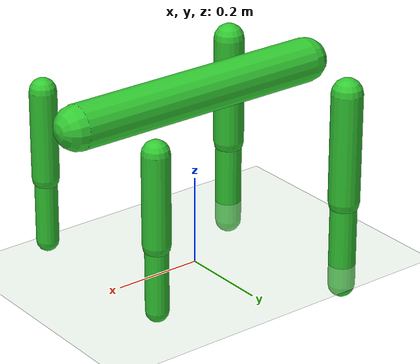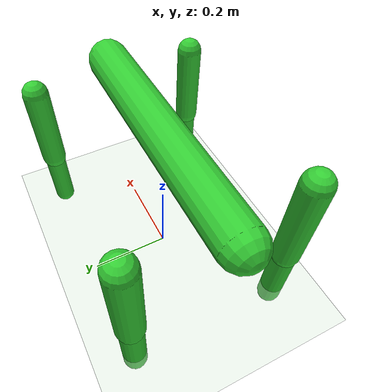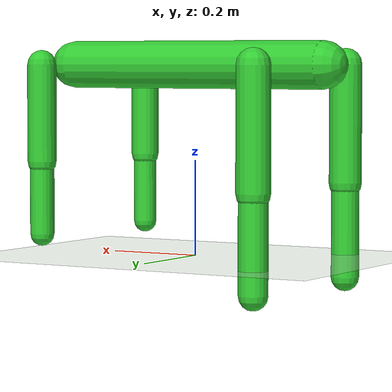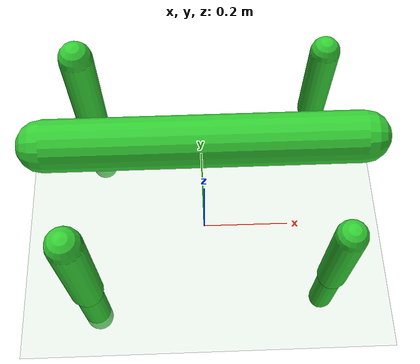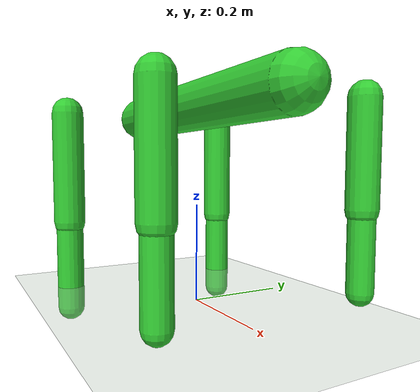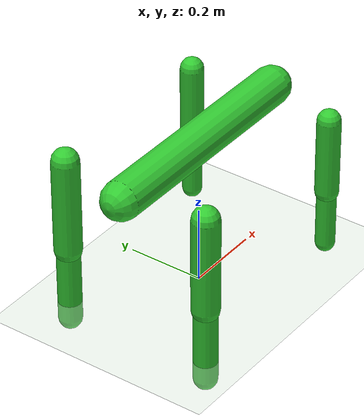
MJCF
<mujoco model="frog">
  <compiler angle="radian" coordinate="local" inertiafromgeom="true" settotalmass="5"/>
  <default>
    <joint armature=".1" damping=".01" limited="true" solimplimit="0 .8 .03" solreflimit=".02 1" stiffness="8"/>
    <geom conaffinity="0" condim="3" contype="1" friction=".4 .1 .1" rgba="0.2 0.8 0.2 1" solimp="0.0 0.8 0.01" solref="0.02 1"/>
    <motor ctrllimited="true" ctrlrange="-1 1"/>
  </default>
  <size nstack="300000"/>
  <option gravity="0 0 -9.81" timestep="0.01"/>
  <asset>
    <texture builtin="gradient" height="100" rgb1="1 1 1" rgb2="0 0 0" type="skybox" width="100"/>
    <material name="geom" rgba="0.2 0.8 0.2 1"/>
  </asset>
  <worldbody>
    <light cutoff="100" diffuse="1 1 1" dir="-0 0 -1.3" directional="true" exponent="1" pos="0 0 1.3" specular=".1 .1 .1"/>
    <geom type="plane" pos="0 0 0" size="10 10 0.1" rgba="0.8 0.9 0.8 1"/>
    <body name="torso" pos="0 0 0.4">
      <joint name="rootx" type="slide" axis="1 0 0"/>
      <joint name="rootz" type="slide" axis="0 0 1"/>
      <joint name="rooty" type="hinge" axis="0 1 0"/>
      <geom type="capsule" fromto="-.3 0 0 .3 0 0" size="0.05"/>

      <!-- Left Front Leg -->
      <body name="lf_upper" pos="0.25 0.2 0">
        <joint name="lf_thigh" type="hinge" axis="0 1 0" range="-1 1"/>
        <geom type="capsule" fromto="0 0 0 0 0 -0.2" size="0.03"/>
        <body name="lf_lower" pos="0 0 -0.2">
          <joint name="lf_shin" type="hinge" axis="0 1 0" range="-1.2 0.5"/>
          <geom type="capsule" fromto="0 0 0 0 0 -0.15" size="0.025"/>
        </body>
      </body>

      <!-- Right Front Leg -->
      <body name="rf_upper" pos="0.25 -0.2 0">
        <joint name="rf_thigh" type="hinge" axis="0 1 0" range="-1 1"/>
        <geom type="capsule" fromto="0 0 0 0 0 -0.2" size="0.03"/>
        <body name="rf_lower" pos="0 0 -0.2">
          <joint name="rf_shin" type="hinge" axis="0 1 0" range="-1.2 0.5"/>
          <geom type="capsule" fromto="0 0 0 0 0 -0.15" size="0.025"/>
        </body>
      </body>

      <!-- Left Back Leg -->
      <body name="lb_upper" pos="-0.25 0.2 0">
        <joint name="lb_thigh" type="hinge" axis="0 1 0" range="-1 1"/>
        <geom type="capsule" fromto="0 0 0 0 0 -0.25" size="0.035"/>
        <body name="lb_lower" pos="0 0 -0.25">
          <joint name="lb_shin" type="hinge" axis="0 1 0" range="-1.2 0.5"/>
          <geom type="capsule" fromto="0 0 0 0 0 -0.2" size="0.03"/>
        </body>
      </body>

      <!-- Right Back Leg -->
      <body name="rb_upper" pos="-0.25 -0.2 0">
        <joint name="rb_thigh" type="hinge" axis="0 1 0" range="-1 1"/>
        <geom type="capsule" fromto="0 0 0 0 0 -0.25" size="0.035"/>
        <body name="rb_lower" pos="0 0 -0.25">
          <joint name="rb_shin" type="hinge" axis="0 1 0" range="-1.2 0.5"/>
          <geom type="capsule" fromto="0 0 0 0 0 -0.2" size="0.03"/>
        </body>
      </body>
    </body>
  </worldbody>

  <actuator>
    <motor joint="lf_thigh" gear="100"/>
    <motor joint="lf_shin" gear="80"/>
    <motor joint="rf_thigh" gear="100"/>
    <motor joint="rf_shin" gear="80"/>
    <motor joint="lb_thigh" gear="120"/>
    <motor joint="lb_shin" gear="90"/>
    <motor joint="rb_thigh" gear="120"/>
    <motor joint="rb_shin" gear="90"/>
  </actuator>
</mujoco>
